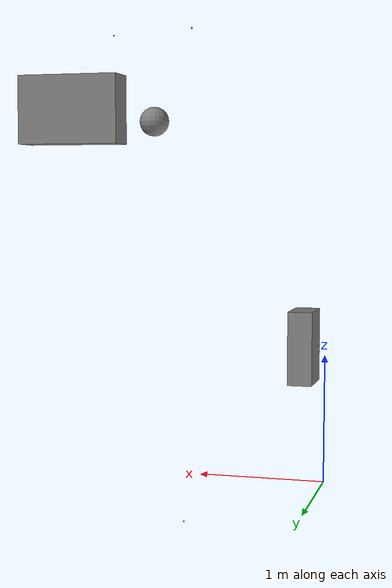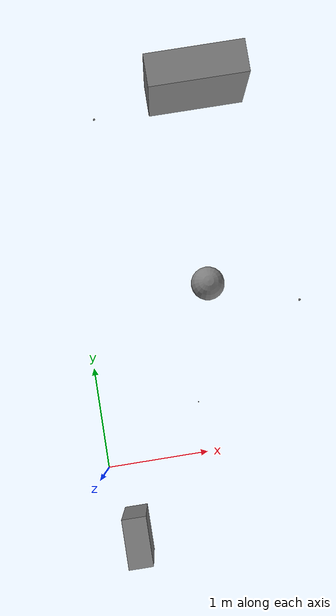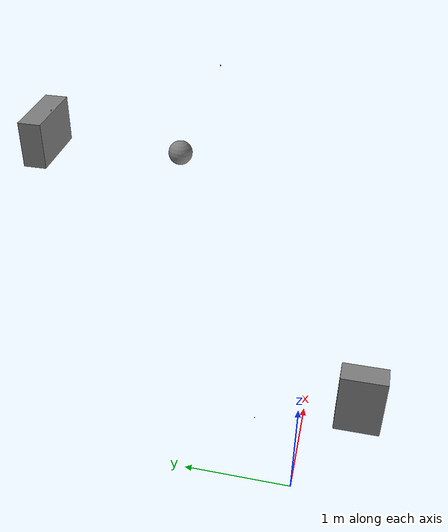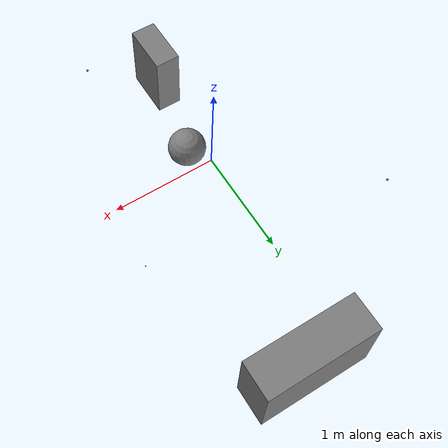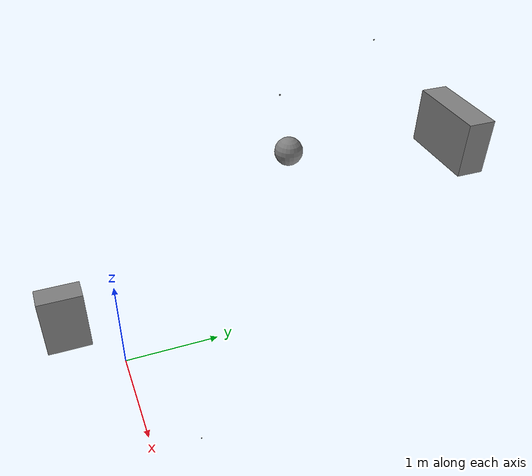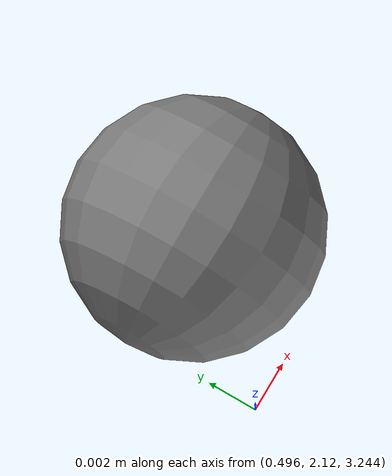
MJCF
<mujoco model="static_attached_frames">
  <compiler angle="radian" fusestatic="false"/>
  <worldbody>
    <geom type="box" size="0.1 0.2 0.3" pos="0.25 -0.5 1" quat="0 0 0 1"/>
    <site pos="1 0.5 -0.25" quat="0.5 0.5 -0.5 0.5"/>
    <body pos="1 2 3" quat="0.5 0.5 0.5 0.5">
      <geom type="box" size="0.1 0.2 0.3" pos="0.5 -0.25 0.125" quat="0 1 0 0"/>
      <site pos="0.125 0.25 -0.5" quat="0 0 1 0"/>
      <body pos="-0.5 0.25 0.125" quat="0 0 0 1">
        <geom type="sphere" size="0.1" pos="0.25 0.5 -0.125" quat="0.5 -0.5 0.5 0.5"/>
        <site pos="0.5 -0.125 0.25" quat="0.5 0.5 -0.5 -0.5"/>
      </body>
    </body>
  </worldbody>
</mujoco>
